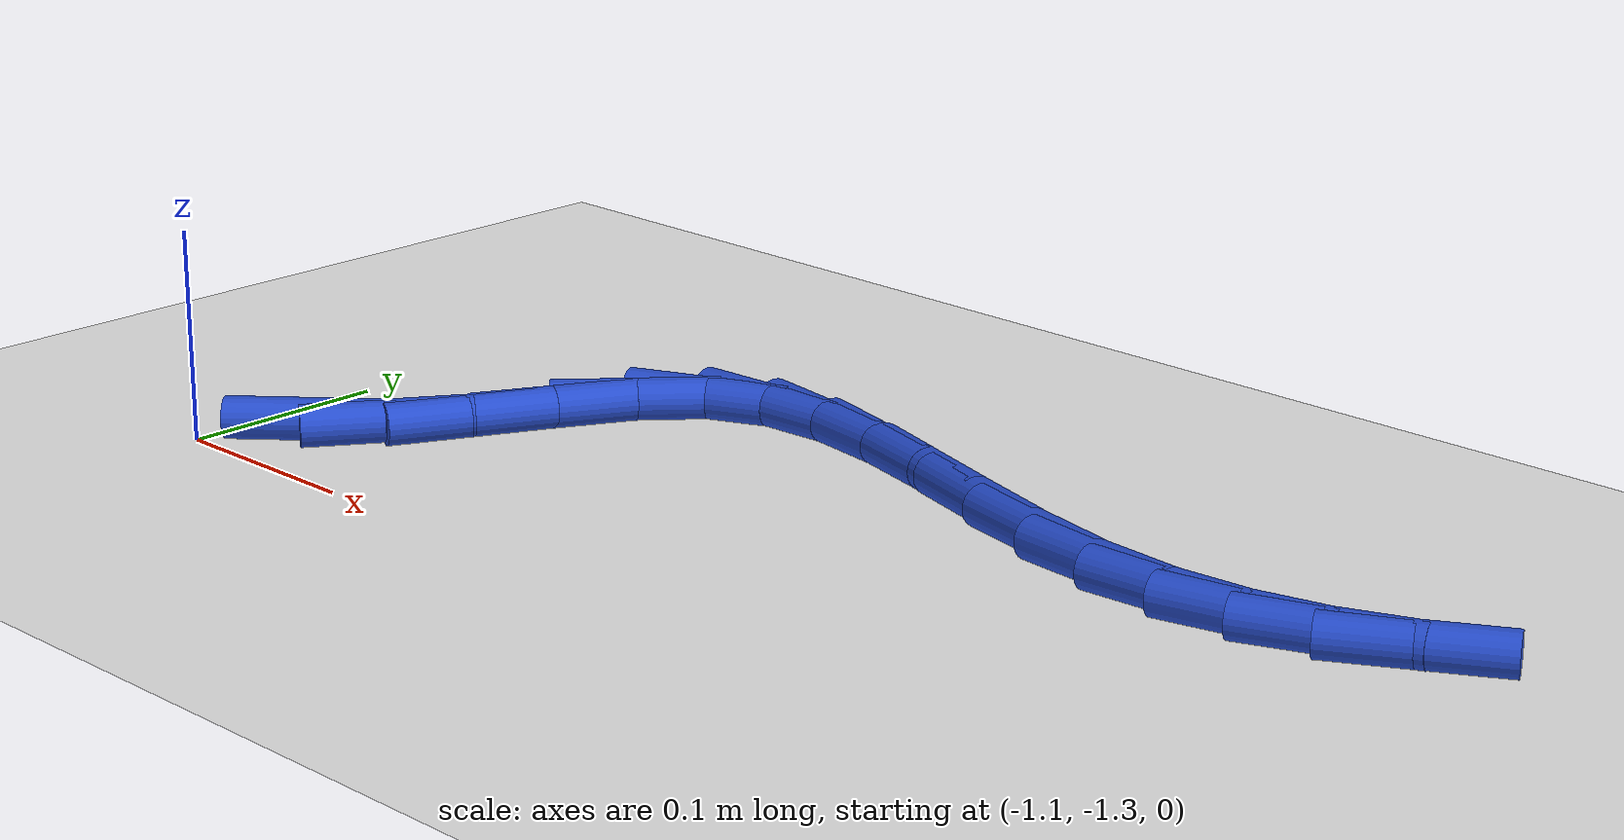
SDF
<sdf version="1.6">
 <world name="default">
  <model name="ground_plane">
   <static>1</static>
   <link name="link">
    <collision name="collision">
     <geometry><plane><normal>0 0 1</normal><size>100 100</size></plane></geometry>
     <surface><friction><ode><mu>100</mu><mu2>50</mu2></ode></friction></surface>
    </collision>
    <visual name="visual">
     <cast_shadows>0</cast_shadows>
     <geometry><plane><normal>0 0 1</normal><size>100 100</size></plane></geometry>
     <material>
      <script><uri>file://media/materials/scripts/gazebo.material</uri><name>Gazebo/WhiteGlow</name></script>
     </material>
    </visual>
   </link>
  </model>
  <model name="line">
   <link name="link_152">
    <pose>-1.063242716316242 -1.2621119937571428 0.01 0 1.57 0.7073489905863893</pose>
    <collision name="collision">
     <geometry><cylinder><radius>0.01</radius><length>0.08</length></cylinder></geometry>
    </collision>
    <visual name="visual">
     <material>
      <script><name>Gazebo/Blue</name><uri>file://media/materials/scripts/gazebo.material</uri></script>
     </material>
     <geometry><cylinder><radius>0.01</radius><length>0.08</length></cylinder></geometry>
    </visual>
   </link>
   <link name="link_153">
    <pose>-1.0363004489858763 -1.2390782522866903 0.01 0 1.57 0.967682798841669</pose>
    <collision name="collision">
     <geometry><cylinder><radius>0.01</radius><length>0.08</length></cylinder></geometry>
    </collision>
    <visual name="visual">
     <material>
      <script><name>Gazebo/Blue</name><uri>file://media/materials/scripts/gazebo.material</uri></script>
     </material>
     <geometry><cylinder><radius>0.01</radius><length>0.08</length></cylinder></geometry>
    </visual>
   </link>
   <link name="link_154">
    <pose>-1.0146560779490512 -1.2076511794878213 0.01 0 1.57 1.1011086169221276</pose>
    <collision name="collision">
     <geometry><cylinder><radius>0.01</radius><length>0.08</length></cylinder></geometry>
    </collision>
    <visual name="visual">
     <material>
      <script><name>Gazebo/Blue</name><uri>file://media/materials/scripts/gazebo.material</uri></script>
     </material>
     <geometry><cylinder><radius>0.01</radius><length>0.08</length></cylinder></geometry>
    </visual>
   </link>
   <link name="link_155">
    <pose>-0.9963700543318033 -1.1716247943172649 0.01 0 1.57 1.0695175756649666</pose>
    <collision name="collision">
     <geometry><cylinder><radius>0.01</radius><length>0.08</length></cylinder></geometry>
    </collision>
    <visual name="visual">
     <material>
      <script><name>Gazebo/Blue</name><uri>file://media/materials/scripts/gazebo.material</uri></script>
     </material>
     <geometry><cylinder><radius>0.01</radius><length>0.08</length></cylinder></geometry>
    </visual>
   </link>
   <link name="link_156">
    <pose>-0.9777589322368324 -1.1376606640234939 0.01 0 1.57 0.838872653680459</pose>
    <collision name="collision">
     <geometry><cylinder><radius>0.01</radius><length>0.08</length></cylinder></geometry>
    </collision>
    <visual name="visual">
     <material>
      <script><name>Gazebo/Blue</name><uri>file://media/materials/scripts/gazebo.material</uri></script>
     </material>
     <geometry><cylinder><radius>0.01</radius><length>0.08</length></cylinder></geometry>
    </visual>
   </link>
   <link name="link_157">
    <pose>-0.9551157360199038 -1.1124564080912833 0.01 0 1.57 0.412435413033426</pose>
    <collision name="collision">
     <geometry><cylinder><radius>0.01</radius><length>0.08</length></cylinder></geometry>
    </collision>
    <visual name="visual">
     <material>
      <script><name>Gazebo/Blue</name><uri>file://media/materials/scripts/gazebo.material</uri></script>
     </material>
     <geometry><cylinder><radius>0.01</radius><length>0.08</length></cylinder></geometry>
    </visual>
   </link>
   <link name="link_158">
    <pose>-0.9262530379685633 -1.0998281189867036 0.01 0 1.57 0.061686524426628433</pose>
    <collision name="collision">
     <geometry><cylinder><radius>0.01</radius><length>0.08</length></cylinder></geometry>
    </collision>
    <visual name="visual">
     <material>
      <script><name>Gazebo/Blue</name><uri>file://media/materials/scripts/gazebo.material</uri></script>
     </material>
     <geometry><cylinder><radius>0.01</radius><length>0.08</length></cylinder></geometry>
    </visual>
   </link>
   <link name="link_159">
    <pose>-0.8920812176549462 -1.0977175003509592 0.01 0 1.57 -0.1464394942598172</pose>
    <collision name="collision">
     <geometry><cylinder><radius>0.01</radius><length>0.08</length></cylinder></geometry>
    </collision>
    <visual name="visual">
     <material>
      <script><name>Gazebo/Blue</name><uri>file://media/materials/scripts/gazebo.material</uri></script>
     </material>
     <geometry><cylinder><radius>0.01</radius><length>0.08</length></cylinder></geometry>
    </visual>
   </link>
   <link name="link_160">
    <pose>-0.8538879269813429 -1.1033508322509056 0.01 0 1.57 -0.2535099450086688</pose>
    <collision name="collision">
     <geometry><cylinder><radius>0.01</radius><length>0.08</length></cylinder></geometry>
    </collision>
    <visual name="visual">
     <material>
      <script><name>Gazebo/Blue</name><uri>file://media/materials/scripts/gazebo.material</uri></script>
     </material>
     <geometry><cylinder><radius>0.01</radius><length>0.08</length></cylinder></geometry>
    </visual>
   </link>
   <link name="link_161">
    <pose>-0.8129608178500425 -1.1139543947533987 0.01 0 1.57 -0.2933629635610736</pose>
    <collision name="collision">
     <geometry><cylinder><radius>0.01</radius><length>0.08</length></cylinder></geometry>
    </collision>
    <visual name="visual">
     <material>
      <script><name>Gazebo/Blue</name><uri>file://media/materials/scripts/gazebo.material</uri></script>
     </material>
     <geometry><cylinder><radius>0.01</radius><length>0.08</length></cylinder></geometry>
    </visual>
   </link>
   <link name="link_162">
    <pose>-0.7705875421633347 -1.1267544679252939 0.01 0 1.57 -0.2798406745109003</pose>
    <collision name="collision">
     <geometry><cylinder><radius>0.01</radius><length>0.08</length></cylinder></geometry>
    </collision>
    <visual name="visual">
     <material>
      <script><name>Gazebo/Blue</name><uri>file://media/materials/scripts/gazebo.material</uri></script>
     </material>
     <geometry><cylinder><radius>0.01</radius><length>0.08</length></cylinder></geometry>
    </visual>
   </link>
   <link name="link_163">
    <pose>-0.7280557518235095 -1.1389773318334475 0.01 0 1.57 -0.2110918927114539</pose>
    <collision name="collision">
     <geometry><cylinder><radius>0.01</radius><length>0.08</length></cylinder></geometry>
    </collision>
    <visual name="visual">
     <material>
      <script><name>Gazebo/Blue</name><uri>file://media/materials/scripts/gazebo.material</uri></script>
     </material>
     <geometry><cylinder><radius>0.01</radius><length>0.08</length></cylinder></geometry>
    </visual>
   </link>
   <link name="link_164">
    <pose>-0.6866530987328562 -1.1478492665447149 0.01 0 1.57 -0.08232760899721575</pose>
    <collision name="collision">
     <geometry><cylinder><radius>0.01</radius><length>0.08</length></cylinder></geometry>
    </collision>
    <visual name="visual">
     <material>
      <script><name>Gazebo/Blue</name><uri>file://media/materials/scripts/gazebo.material</uri></script>
     </material>
     <geometry><cylinder><radius>0.01</radius><length>0.08</length></cylinder></geometry>
    </visual>
   </link>
   <link name="link_165">
    <pose>-0.6474483840245796 -1.151084208908057 0.01 0 1.57 0.06956216554050158</pose>
    <collision name="collision">
     <geometry><cylinder><radius>0.01</radius><length>0.08</length></cylinder></geometry>
    </collision>
    <visual name="visual">
     <material>
      <script><name>Gazebo/Blue</name><uri>file://media/materials/scripts/gazebo.material</uri></script>
     </material>
     <geometry><cylinder><radius>0.01</radius><length>0.08</length></cylinder></geometry>
    </visual>
   </link>
   <link name="link_166">
    <pose>-0.6105599257039467 -1.148514020902669 0.01 0 1.57 0.22565512898714016</pose>
    <collision name="collision">
     <geometry><cylinder><radius>0.01</radius><length>0.08</length></cylinder></geometry>
    </collision>
    <visual name="visual">
     <material>
      <script><name>Gazebo/Blue</name><uri>file://media/materials/scripts/gazebo.material</uri></script>
     </material>
     <geometry><cylinder><radius>0.01</radius><length>0.08</length></cylinder></geometry>
    </visual>
   </link>
   <link name="link_167">
    <pose>-0.5758480686320943 -1.1405453961789442 0.01 0 1.57 0.37761118701013263</pose>
    <collision name="collision">
     <geometry><cylinder><radius>0.01</radius><length>0.08</length></cylinder></geometry>
    </collision>
    <visual name="visual">
     <material>
      <script><name>Gazebo/Blue</name><uri>file://media/materials/scripts/gazebo.material</uri></script>
     </material>
     <geometry><cylinder><radius>0.01</radius><length>0.08</length></cylinder></geometry>
    </visual>
   </link>
   <link name="link_168">
    <pose>-0.5431731527677076 -1.127585039311215 0.01 0 1.57 0.5181208270749923</pose>
    <collision name="collision">
     <geometry><cylinder><radius>0.01</radius><length>0.08</length></cylinder></geometry>
    </collision>
    <visual name="visual">
     <material>
      <script><name>Gazebo/Blue</name><uri>file://media/materials/scripts/gazebo.material</uri></script>
     </material>
     <geometry><cylinder><radius>0.01</radius><length>0.08</length></cylinder></geometry>
    </visual>
   </link>
  </model>
 </world>
</sdf>
